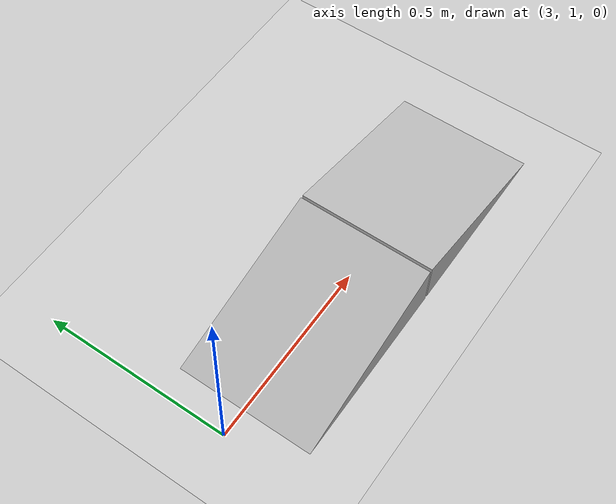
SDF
<sdf version="1.7">
 <world name="default">
  <light name="sun" type="directional">
   <pose>0 0 10 0 -0 0</pose>
   <diffuse>0.8 0.8 0.8 1</diffuse>
   <specular>0.2 0.2 0.2 1</specular>
   <attenuation>
    <range>1000</range>
    <constant>0.9</constant>
    <linear>0.01</linear>
    <quadratic>0.001</quadratic>
   </attenuation>
   <direction>-0.5 0.1 -0.9</direction>
   <spot><inner_angle>0</inner_angle><outer_angle>0</outer_angle><falloff>0</falloff></spot>
  </light>
  <model name="ground_plane">
   <static>1</static>
   <link name="link">
    <collision name="collision">
     <geometry><plane><normal>0 0 1</normal><size>100 100</size></plane></geometry>
     <surface>
      <contact><collide_bitmask>65535</collide_bitmask></contact>
      <friction><ode><mu>100</mu><mu2>50</mu2></ode></friction>
     </surface>
    </collision>
    <visual name="visual">
     <cast_shadows>0</cast_shadows>
     <geometry><plane><normal>0 0 1</normal><size>100 100</size></plane></geometry>
     <material>
      <script><uri>file://media/materials/scripts/gazebo.material</uri><name>Gazebo/Grey</name></script>
     </material>
    </visual>
   </link>
  </model>
  <gravity>0 0 -9.8</gravity>
  <magnetic_field>6e-06 2.3e-05 -4.2e-05</magnetic_field>
  <atmosphere type="adiabatic"/>
  <physics type="ode">
   <max_step_size>0.001</max_step_size>
   <real_time_factor>1</real_time_factor>
   <real_time_update_rate>1000</real_time_update_rate>
  </physics>
  <scene><ambient>0.4 0.4 0.4 1</ambient><background>0.7 0.7 0.7 1</background><shadows>1</shadows></scene>
  <spherical_coordinates>
   <surface_model>EARTH_WGS84</surface_model>
   <latitude_deg>0</latitude_deg>
   <longitude_deg>0</longitude_deg>
   <elevation>0</elevation>
   <heading_deg>0</heading_deg>
  </spherical_coordinates>
  <model name="rampa">
   <link name="link">
    <collision name="collision">
     <geometry><mesh><scale>0.12 0.12 0.12</scale><uri>model://rampa/meshes/rampa.stl</uri></mesh></geometry>
    </collision>
    <visual name="visual">
     <geometry><mesh><scale>0.12 0.12 0.12</scale><uri>model://rampa/meshes/rampa.dae</uri></mesh></geometry>
    </visual>
    <inertial>
     <inertia><ixx>1</ixx><ixy>0</ixy><ixz>0</ixz><iyy>1</iyy><iyz>0</iyz><izz>1</izz></inertia>
     <mass>1</mass>
    </inertial>
   </link>
   <pose>3.31312 1 -0.060009 1e-06 1e-06 0</pose>
  </model>
  <model name="rampa_0">
   <link name="link">
    <collision name="collision">
     <geometry><mesh><scale>0.12 0.12 0.12</scale><uri>model://rampa/meshes/rampa.stl</uri></mesh></geometry>
    </collision>
    <visual name="visual">
     <geometry><mesh><scale>0.12 0.12 0.12</scale><uri>model://rampa/meshes/rampa.dae</uri></mesh></geometry>
    </visual>
    <inertial>
     <inertia><ixx>1</ixx><ixy>0</ixy><ixz>0</ixz><iyy>1</iyy><iyz>0</iyz><izz>1</izz></inertia>
     <mass>1</mass>
    </inertial>
   </link>
   <pose>3.80031 1.00002 -0.060005 0 -2e-06 3.1415</pose>
  </model>
 </world>
</sdf>
